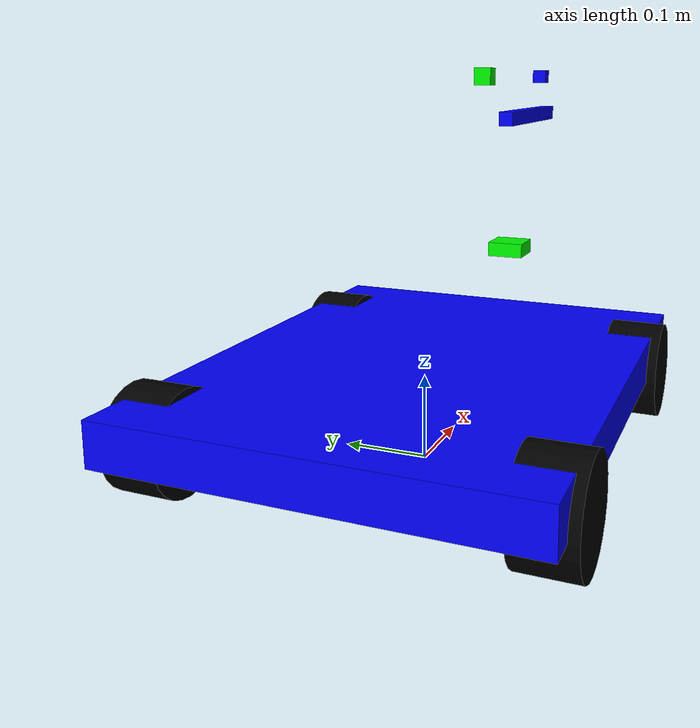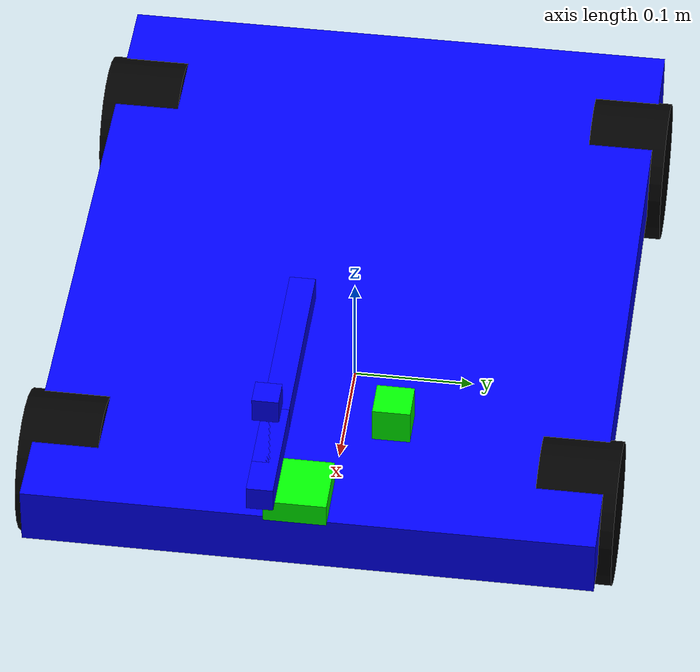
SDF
<?xml version="1.0" ?>

<sdf version='1.9'>
  <model name='ackermann_robot'>
    <link name='base_footprint'>
      <inertial>
        <pose>0.003346535 0 0.097940594 0 0 0</pose>
        <mass>10.1</mass>
        <inertia>
          <ixx>0.148403564</ixx>
          <ixy>0</ixy>
          <ixz>-0.003179208</ixz>
          <iyy>0.314714851</iyy>
          <iyz>0</iyz>
          <izz>0.453831287</izz>
        </inertia>
      </inertial>
      <collision name='base_footprint_fixed_joint_lump__base_link_collision'>
        <pose>0 0 0.097 0 0 0</pose>
        <geometry>
          <box>
            <size>0.6 0.463 0.05</size>
          </box>
        </geometry>
        <surface>
          <contact>
            <ode/>
          </contact>
          <friction>
            <ode/>
          </friction>
        </surface>
      </collision>
      <collision name='base_footprint_fixed_joint_lump__cam_link1_collision_1'>
        <pose>0.409 0 0.3815 0 0 0</pose>
        <geometry>
          <box>
            <size>0.2025 0.02 0.02</size>
          </box>
        </geometry>
      </collision>
      <collision name='base_footprint_fixed_joint_lump__cam_link2_collision_2'>
        <pose>0.496 0 0.3815 0 0 0</pose>
        <geometry>
          <box>
            <size>0.087 0.02 0.02</size>
          </box>
        </geometry>
      </collision>
      <collision name='base_footprint_fixed_joint_lump__cam0_collision_3'>
        <pose>0.496 0.0936 0.4395 0 0 0</pose>
        <geometry>
          <box>
            <size>0.02 0.02 0.02</size>
          </box>
        </geometry>
      </collision>
      <collision name='cam1_collision'>
        <pose>0.496 0 0.4395 0 0 0</pose>
        <geometry>
          <box>
            <size>0.02 0.02 0.02</size>
          </box>
        </geometry>
      </collision>
      <collision name='base_footprint_fixed_joint_lump__cam0_depth_collision_4'>
        <pose>0.496 0.0936 0.4395 -1.5707963268 0 -1.5707963268</pose>
        <geometry>
          <box>
            <size>0.028 0.028 0.028</size>
          </box>
        </geometry>
      </collision>
      <collision name='base_footprint_fixed_joint_lump__cam0_undis_collision_5'>
        <pose>0.496 0.0936 0.4395 -1.5707963268 0 -1.5707963268</pose>
        <geometry>
          <box>
            <size>0.028 0.028 0.028</size>
          </box>
        </geometry>
      </collision>
      <collision name='base_footprint_fixed_joint_lump__imu_link_collision_6'>
        <pose>0.338 0 0.192 0 0 0</pose>
        <geometry>
          <box>
            <size>0.05 0.05 0.02</size>
          </box>
        </geometry>
        <surface>
          <contact>
            <ode/>
          </contact>
          <friction>
            <ode/>
          </friction>
        </surface>
      </collision>
      <visual name='base_footprint_fixed_joint_lump__base_link_visual'>
        <pose>0 0 0.097 0 0 0</pose>
        <geometry>
          <box>
            <size>0.6 0.463 0.05</size>
          </box>
        </geometry>
        <material>
          <diffuse>0 0 1 1</diffuse>
          <ambient>0 0 1 1</ambient>
        </material>
      </visual>
      <visual name='base_footprint_fixed_joint_lump__cam_link1_visual_1'>
        <pose>0.409 0 0.3815 0 0 0</pose>
        <geometry>
          <box>
            <size>0.2025 0.02 0.02</size>
          </box>
        </geometry>
        <material>
          <diffuse>0 0 1 1</diffuse>
          <ambient>0 0 1 1</ambient>
        </material>
      </visual>
      <visual name='base_footprint_fixed_joint_lump__cam_link2_visual_2'>
        <pose>0.496 0 0.3815 0 0 0</pose>
        <geometry>
          <box>
            <size>0.087 0.02 0.02</size>
          </box>
        </geometry>
        <material>
          <diffuse>0 0 1 1</diffuse>
          <ambient>0 0 1 1</ambient>
        </material>
      </visual>
      <visual name='base_footprint_fixed_joint_lump__cam0_visual_3'>
        <pose>0.496 0.0936 0.4395 0 0 0</pose>
        <geometry>
          <box>
            <size>0.02 0.02 0.02</size>
          </box>
        </geometry>
        <material>
          <diffuse>0 0 1 1</diffuse>
          <ambient>0 0 1 1</ambient>
        </material>
      </visual>
      <visual name='cam1_visual'>
        <pose>0.496 0 0.4395 0 0 0</pose>
        <geometry>
          <box>
            <size>0.02 0.02 0.02</size>
          </box>
        </geometry>
        <material>
          <diffuse>0 0 1 1</diffuse>
          <ambient>0 0 1 1</ambient>
        </material>
      </visual>
      <visual name='base_footprint_fixed_joint_lump__cam0_depth_visual_4'>
        <pose>0.496 0.0936 0.4395 -1.5707963268 0 -1.5707963268</pose>
        <geometry>
          <box>
            <size>0.028 0.028 0.028</size>
          </box>
        </geometry>
        <material>
          <diffuse>0 1 0 1</diffuse>
          <ambient>0 1 0 1</ambient>
        </material>
      </visual>
      <visual name='base_footprint_fixed_joint_lump__cam0_undis_visual_5'>
        <pose>0.496 0.0936 0.4395 -1.5707963268 0 -1.5707963268</pose>
        <geometry>
          <box>
            <size>0.028 0.028 0.028</size>
          </box>
        </geometry>
        <material>
          <diffuse>0 1 0 1</diffuse>
          <ambient>0 1 0 1</ambient>
        </material>
      </visual>
      <visual name='base_footprint_fixed_joint_lump__imu_link_visual_6'>
        <pose>0.338 0 0.192 0 0 0</pose>
        <geometry>
          <box>
            <size>0.05 0.05 0.02</size>
          </box>
        </geometry>
        <material>
          <diffuse>0 1 0 1</diffuse>
          <ambient>0 1 0 1</ambient>
        </material>
      </visual>

      <sensor name='cam0' type='camera'>
        <pose relative_to='cam0'>0 0 0 0 -0 0</pose>
        <topic>cam0/image_raw</topic>
        <update_rate>30</update_rate>
        <always_on>1</always_on>
        <visualize>0</visualize>
        <camera>
          <horizontal_fov>1.5707963268</horizontal_fov>
          <image>
            <width>1280</width>
            <height>720</height>
            <format>R8G8B8</format>
          </image>
          <clip>
            <near>0.05</near>
            <far>100</far>
          </clip>
          <!-- A little sensor noise so the feature tracker is not fed a
               noiseless render, which is unrealistically easy. -->
          <noise>
            <type>gaussian</type>
            <mean>0</mean>
            <stddev>0.005</stddev>
          </noise>
        </camera>
      </sensor>

      <sensor name='cam1' type='camera'>
        <pose relative_to='cam1'>0 0 0 0 -0 0</pose>
        <topic>cam1/image_raw</topic>
        <update_rate>30</update_rate>
        <always_on>1</always_on>
        <visualize>0</visualize>
        <camera>
          <horizontal_fov>1.5707963268</horizontal_fov>
          <image>
            <width>1280</width>
            <height>720</height>
            <format>R8G8B8</format>
          </image>
          <clip>
            <near>0.05</near>
            <far>100</far>
          </clip>
          <noise>
            <type>gaussian</type>
            <mean>0</mean>
            <stddev>0.005</stddev>
          </noise>
        </camera>
      </sensor>

      <sensor name='imu' type='imu'>
        <pose relative_to='imu_link'>0 0 0 0 -0 0</pose>
        <topic>imu</topic>
        <update_rate>200</update_rate>
        <always_on>1</always_on>
        <imu>
          <angular_velocity>
            <x>
              <noise type='gaussian'>
                <mean>0</mean>
                <stddev>0.0048</stddev>
                <dynamic_bias_stddev>3.8785e-05</dynamic_bias_stddev>
                <dynamic_bias_correlation_time>1000</dynamic_bias_correlation_time>
              </noise>
            </x>
            <y>
              <noise type='gaussian'>
                <mean>0</mean>
                <stddev>0.0048</stddev>
                <dynamic_bias_stddev>3.8785e-05</dynamic_bias_stddev>
                <dynamic_bias_correlation_time>1000</dynamic_bias_correlation_time>
              </noise>
            </y>
            <z>
              <noise type='gaussian'>
                <mean>0</mean>
                <stddev>0.0048</stddev>
                <dynamic_bias_stddev>3.8785e-05</dynamic_bias_stddev>
                <dynamic_bias_correlation_time>1000</dynamic_bias_correlation_time>
              </noise>
            </z>
          </angular_velocity>
          <linear_acceleration>
            <x>
              <noise type='gaussian'>
                <mean>0</mean>
                <stddev>0.0566</stddev>
                <dynamic_bias_stddev>0.006</dynamic_bias_stddev>
                <dynamic_bias_correlation_time>300</dynamic_bias_correlation_time>
              </noise>
            </x>
            <y>
              <noise type='gaussian'>
                <mean>0</mean>
                <stddev>0.0566</stddev>
                <dynamic_bias_stddev>0.006</dynamic_bias_stddev>
                <dynamic_bias_correlation_time>300</dynamic_bias_correlation_time>
              </noise>
            </y>
            <z>
              <noise type='gaussian'>
                <mean>0</mean>
                <stddev>0.0566</stddev>
                <dynamic_bias_stddev>0.006</dynamic_bias_stddev>
                <dynamic_bias_correlation_time>300</dynamic_bias_correlation_time>
              </noise>
            </z>
          </linear_acceleration>
        </imu>
      </sensor>
    </link>
    <joint name='front_left_steering_joint' type='revolute'>
      <pose relative_to='base_footprint'>0.21 0.21 0.072 0 0 0</pose>
      <parent>base_footprint</parent>
      <child>front_left_steering_knuckle</child>
      <axis>
        <xyz>0 0 1</xyz>
        <limit>
          <lower>-0.6109</lower>
          <upper>0.6109</upper>
          <effort>100</effort>
          <velocity>1</velocity>
        </limit>
        <dynamics>
          <damping>0.1</damping>
          <friction>0.01</friction>
          <spring_reference>0</spring_reference>
          <spring_stiffness>0</spring_stiffness>
        </dynamics>
      </axis>
    </joint>
    <link name='front_left_steering_knuckle'>
      <pose relative_to='front_left_steering_joint'>0 0 0 0 0 0</pose>
      <inertial>
        <pose>0 0 0 0 0 0</pose>
        <mass>0.2</mass>
        <inertia>
          <ixx>0.0002</ixx>
          <ixy>0</ixy>
          <ixz>0</ixz>
          <iyy>0.0002</iyy>
          <iyz>0</iyz>
          <izz>0.0001</izz>
        </inertia>
      </inertial>
      <collision name='front_left_steering_knuckle_collision'>
        <pose>0 0 0 0 0 0</pose>
        <geometry>
          <box>
            <size>0.05 0.05 0.1</size>
          </box>
        </geometry>
        <surface>
          <contact>
            <ode/>
          </contact>
          <friction>
            <ode/>
          </friction>
        </surface>
      </collision>
      <visual name='front_left_steering_knuckle_visual'>
        <pose>0 0 0 0 0 0</pose>
        <geometry>
          <box>
            <size>0.05 0.05 0.1</size>
          </box>
        </geometry>
        <material>
          <diffuse>0.625 0.625 0.625 1</diffuse>
          <ambient>0.625 0.625 0.625 1</ambient>
        </material>
      </visual>
    </link>
    <joint name='front_left_wheel_joint' type='revolute'>
      <pose relative_to='front_left_steering_knuckle'>0 0 0 -1.5708 0 0</pose>
      <parent>front_left_steering_knuckle</parent>
      <child>front_left_wheel</child>
      <axis>
        <xyz>0 0 1</xyz>
        <limit>
          <lower>-10000000000000000</lower>
          <upper>10000000000000000</upper>
        </limit>
        <dynamics>
          <damping>0.0</damping>
          <friction>0.0</friction>
          <spring_reference>0</spring_reference>
          <spring_stiffness>0</spring_stiffness>
        </dynamics>
      </axis>
    </joint>
    <link name='front_left_wheel'>
      <pose relative_to='front_left_wheel_joint'>0 0 0 0 0 0</pose>
      <inertial>
        <pose>0 0 0 0 0 0</pose>
        <mass>0.5</mass>
        <inertia>
          <ixx>0.000531</ixx>
          <ixy>0</ixy>
          <ixz>0</ixz>
          <iyy>0.000531</iyy>
          <iyz>0</iyz>
          <izz>0.000856</izz>
        </inertia>
      </inertial>
      <collision name='front_left_wheel_collision'>
        <pose>0 0 0 0 0 0</pose>
        <geometry>
          <cylinder>
            <length>0.065</length>
            <radius>0.0585</radius>
          </cylinder>
        </geometry>
        <surface>
          <contact>
            <ode/>
          </contact>
          <friction>
            <ode>
              <mu>1</mu>
              <mu2>1</mu2>
            </ode>
          </friction>
        </surface>
      </collision>
      <visual name='front_left_wheel_visual'>
        <pose>0 0 0 0 0 0</pose>
        <geometry>
          <cylinder>
            <length>0.065</length>
            <radius>0.0585</radius>
          </cylinder>
        </geometry>
        <material>
          <diffuse>0 0 0 1</diffuse>
          <ambient>0 0 0 1</ambient>
        </material>
      </visual>
    </link>
    <joint name='front_right_steering_joint' type='revolute'>
      <pose relative_to='base_footprint'>0.21 -0.21 0.072 0 0 0</pose>
      <parent>base_footprint</parent>
      <child>front_right_steering_knuckle</child>
      <axis>
        <xyz>0 0 1</xyz>
        <limit>
          <lower>-0.6109</lower>
          <upper>0.6109</upper>
          <effort>100</effort>
          <velocity>1</velocity>
        </limit>
        <dynamics>
          <damping>0.1</damping>
          <friction>0.01</friction>
          <spring_reference>0</spring_reference>
          <spring_stiffness>0</spring_stiffness>
        </dynamics>
      </axis>
    </joint>
    <link name='front_right_steering_knuckle'>
      <pose relative_to='front_right_steering_joint'>0 0 0 0 0 0</pose>
      <inertial>
        <pose>0 0 0 0 0 0</pose>
        <mass>0.2</mass>
        <inertia>
          <ixx>0.0002</ixx>
          <ixy>0</ixy>
          <ixz>0</ixz>
          <iyy>0.0002</iyy>
          <iyz>0</iyz>
          <izz>0.0001</izz>
        </inertia>
      </inertial>
      <collision name='front_right_steering_knuckle_collision'>
        <pose>0 0 0 0 0 0</pose>
        <geometry>
          <box>
            <size>0.05 0.05 0.1</size>
          </box>
        </geometry>
        <surface>
          <contact>
            <ode/>
          </contact>
          <friction>
            <ode/>
          </friction>
        </surface>
      </collision>
      <visual name='front_right_steering_knuckle_visual'>
        <pose>0 0 0 0 0 0</pose>
        <geometry>
          <box>
            <size>0.05 0.05 0.1</size>
          </box>
        </geometry>
        <material>
          <diffuse>0.625 0.625 0.625 1</diffuse>
          <ambient>0.625 0.625 0.625 1</ambient>
        </material>
      </visual>
    </link>
    <joint name='front_right_wheel_joint' type='revolute'>
      <pose relative_to='front_right_steering_knuckle'>0 0 0 -1.5708 0 0</pose>
      <parent>front_right_steering_knuckle</parent>
      <child>front_right_wheel</child>
      <axis>
        <xyz>0 0 1</xyz>
        <limit>
          <lower>-10000000000000000</lower>
          <upper>10000000000000000</upper>
        </limit>
        <dynamics>
          <damping>0.0</damping>
          <friction>0.0</friction>
          <spring_reference>0</spring_reference>
          <spring_stiffness>0</spring_stiffness>
        </dynamics>
      </axis>
    </joint>
    <link name='front_right_wheel'>
      <pose relative_to='front_right_wheel_joint'>0 0 0 0 0 0</pose>
      <inertial>
        <pose>0 0 0 0 0 0</pose>
        <mass>0.5</mass>
        <inertia>
          <ixx>0.000531</ixx>
          <ixy>0</ixy>
          <ixz>0</ixz>
          <iyy>0.000531</iyy>
          <iyz>0</iyz>
          <izz>0.000856</izz>
        </inertia>
      </inertial>
      <collision name='front_right_wheel_collision'>
        <pose>0 0 0 0 0 0</pose>
        <geometry>
          <cylinder>
            <length>0.065</length>
            <radius>0.0585</radius>
          </cylinder>
        </geometry>
        <surface>
          <contact>
            <ode/>
          </contact>
          <friction>
            <ode>
              <mu>1</mu>
              <mu2>1</mu2>
            </ode>
          </friction>
        </surface>
      </collision>
      <visual name='front_right_wheel_visual'>
        <pose>0 0 0 0 0 0</pose>
        <geometry>
          <cylinder>
            <length>0.065</length>
            <radius>0.0585</radius>
          </cylinder>
        </geometry>
        <material>
          <diffuse>0 0 0 1</diffuse>
          <ambient>0 0 0 1</ambient>
        </material>
      </visual>
    </link>
    <joint name='rear_left_wheel_joint' type='revolute'>
      <pose relative_to='base_footprint'>-0.21 0.21 0.072 -1.5708 0 0</pose>
      <parent>base_footprint</parent>
      <child>rear_left_wheel</child>
      <axis>
        <xyz>0 0 1</xyz>
        <limit>
          <lower>-10000000000000000</lower>
          <upper>10000000000000000</upper>
        </limit>
        <dynamics>
          <damping>0.0</damping>
          <friction>0.0</friction>
          <spring_reference>0</spring_reference>
          <spring_stiffness>0</spring_stiffness>
        </dynamics>
      </axis>
    </joint>
    <link name='rear_left_wheel'>
      <pose relative_to='rear_left_wheel_joint'>0 0 0 0 0 0</pose>
      <inertial>
        <pose>0 0 0 0 0 0</pose>
        <mass>0.5</mass>
        <inertia>
          <ixx>0.000531</ixx>
          <ixy>0</ixy>
          <ixz>0</ixz>
          <iyy>0.000531</iyy>
          <iyz>0</iyz>
          <izz>0.000856</izz>
        </inertia>
      </inertial>
      <collision name='rear_left_wheel_collision'>
        <pose>0 0 0 0 0 0</pose>
        <geometry>
          <cylinder>
            <length>0.065</length>
            <radius>0.0585</radius>
          </cylinder>
        </geometry>
        <surface>
          <contact>
            <ode/>
          </contact>
          <friction>
            <ode>
              <mu>1</mu>
              <mu2>1</mu2>
            </ode>
          </friction>
        </surface>
      </collision>
      <visual name='rear_left_wheel_visual'>
        <pose>0 0 0 0 0 0</pose>
        <geometry>
          <cylinder>
            <length>0.065</length>
            <radius>0.0585</radius>
          </cylinder>
        </geometry>
        <material>
          <diffuse>0 0 0 1</diffuse>
          <ambient>0 0 0 1</ambient>
        </material>
      </visual>
    </link>
    <joint name='rear_right_wheel_joint' type='revolute'>
      <pose relative_to='base_footprint'>-0.21 -0.21 0.072 -1.5708 0 0</pose>
      <parent>base_footprint</parent>
      <child>rear_right_wheel</child>
      <axis>
        <xyz>0 0 1</xyz>
        <limit>
          <lower>-10000000000000000</lower>
          <upper>10000000000000000</upper>
        </limit>
        <dynamics>
          <damping>0.0</damping>
          <friction>0.0</friction>
          <spring_reference>0</spring_reference>
          <spring_stiffness>0</spring_stiffness>
        </dynamics>
      </axis>
    </joint>
    <link name='rear_right_wheel'>
      <pose relative_to='rear_right_wheel_joint'>0 0 0 0 0 0</pose>
      <inertial>
        <pose>0 0 0 0 0 0</pose>
        <mass>0.5</mass>
        <inertia>
          <ixx>0.000531</ixx>
          <ixy>0</ixy>
          <ixz>0</ixz>
          <iyy>0.000531</iyy>
          <iyz>0</iyz>
          <izz>0.000856</izz>
        </inertia>
      </inertial>
      <collision name='rear_right_wheel_collision'>
        <pose>0 0 0 0 0 0</pose>
        <geometry>
          <cylinder>
            <length>0.065</length>
            <radius>0.0585</radius>
          </cylinder>
        </geometry>
        <surface>
          <contact>
            <ode/>
          </contact>
          <friction>
            <ode>
              <mu>1</mu>
              <mu2>1</mu2>
            </ode>
          </friction>
        </surface>
      </collision>
      <visual name='rear_right_wheel_visual'>
        <pose>0 0 0 0 0 0</pose>
        <geometry>
          <cylinder>
            <length>0.065</length>
            <radius>0.0585</radius>
          </cylinder>
        </geometry>
        <material>
          <diffuse>0 0 0 1</diffuse>
          <ambient>0 0 0 1</ambient>
        </material>
      </visual>
    </link>
    <frame name='cam0_depth_joint' attached_to='cam0'>
      <pose>0 0 0 -1.5708 -0 -1.5708</pose>
    </frame>
    <frame name='cam0_depth' attached_to='cam0_depth_joint'/>
    <frame name='cam0_undis_joint' attached_to='cam0'>
      <pose>0 0 0 -1.5708 -0 -1.5708</pose>
    </frame>
    <frame name='cam0_undis' attached_to='cam0_undis_joint'/>
    <frame name='cam0_joint' attached_to='cam_link2'>
      <pose>0 0.0936 0.058 0 -0 0</pose>
    </frame>
    <frame name='cam0' attached_to='cam0_joint'/>
    <frame name='cam1_joint' attached_to='cam0'>
      <pose>0 -0.0936 0 0 -0 0</pose>
    </frame>
    <frame name='cam1' attached_to='cam1_joint'/>
    <frame name='cam1_undis_joint' attached_to='cam1'>
      <pose>0 0 0 -1.5708 -0 -1.5708</pose>
    </frame>
    <frame name='cam1_undis' attached_to='cam1_undis_joint'/>
    <frame name='cam_link2_joint' attached_to='cam_link1'>
      <pose>0.087 0 0 0 -0 0</pose>
    </frame>
    <frame name='cam_link2' attached_to='cam_link2_joint'/>
    <frame name='cam_link1_joint' attached_to='base_link'>
      <pose>0.409 0 0.2845 0 -0 0</pose>
    </frame>
    <frame name='cam_link1' attached_to='cam_link1_joint'/>
    <frame name='imu_joint' attached_to='base_link'>
      <pose>0.338 0 0.095 0 -0 0</pose>
    </frame>
    <frame name='imu_link' attached_to='imu_joint'/>
    <frame name='base_footprint_joint' attached_to='base_footprint'>
      <pose>0 0 0.097 0 -0 0</pose>
    </frame>
    <frame name='base_link' attached_to='base_footprint_joint'/>

    <plugin filename="ignition-gazebo-ackermann-steering-system"
            name="gz::sim::systems::AckermannSteering">
      <!-- Rear-wheel drive, per the "(DRIVEN)" comments in the URDF. -->
      <left_joint>rear_left_wheel_joint</left_joint>
      <right_joint>rear_right_wheel_joint</right_joint>
      <left_steering_joint>front_left_steering_joint</left_steering_joint>
      <right_steering_joint>front_right_steering_joint</right_steering_joint>
      <!-- Measured off the URDF joint origins: axles at x = +/-0.21,
           wheels and kingpins at y = +/-0.21, wheel radius 0.0585. -->
      <kingpin_width>0.42</kingpin_width>
      <wheel_base>0.42</wheel_base>
      <wheel_separation>0.42</wheel_separation>
      <wheel_radius>0.0585</wheel_radius>
      <!-- Matches the +/-0.6109 rad limit on the steering joints. -->
      <steering_limit>0.6109</steering_limit>
      <min_velocity>-10</min_velocity>
      <max_velocity>10</max_velocity>
      <min_acceleration>-3</min_acceleration>
      <max_acceleration>3</max_acceleration>
      <odom_publish_frequency>50</odom_publish_frequency>
    </plugin>

    <plugin filename="ignition-gazebo-odometry-publisher-system"
            name="ignition::gazebo::systems::OdometryPublisher">
      <odom_frame>odom</odom_frame>
      <robot_base_frame>base_footprint</robot_base_frame>
      <odom_topic>/ground_truth/odometry</odom_topic>
      <tf_topic>/ground_truth/pose</tf_topic>
      <!-- 3, not 2: keeps z so a robot that climbs or tips is still described. -->
      <dimensions>3</dimensions>
      <odom_publish_frequency>50</odom_publish_frequency>
    </plugin>
    <plugin filename="ignition-gazebo-joint-state-publisher-system"
            name="ignition::gazebo::systems::JointStatePublisher">
      <topic>/model/ackermann_robot_001/joint_state</topic>
      <joint_name>front_left_steering_joint</joint_name>
      <joint_name>front_right_steering_joint</joint_name>
      <joint_name>front_left_wheel_joint</joint_name>
      <joint_name>front_right_wheel_joint</joint_name>
      <joint_name>rear_left_wheel_joint</joint_name>
      <joint_name>rear_right_wheel_joint</joint_name>
    </plugin>
  </model>
</sdf>
